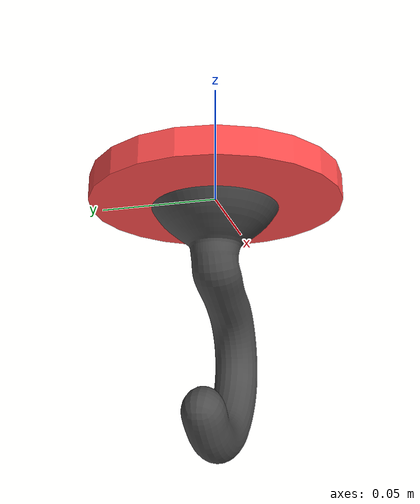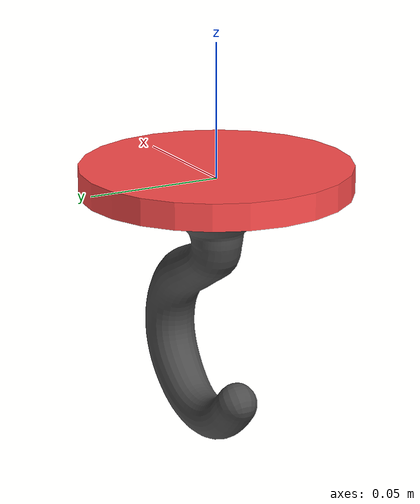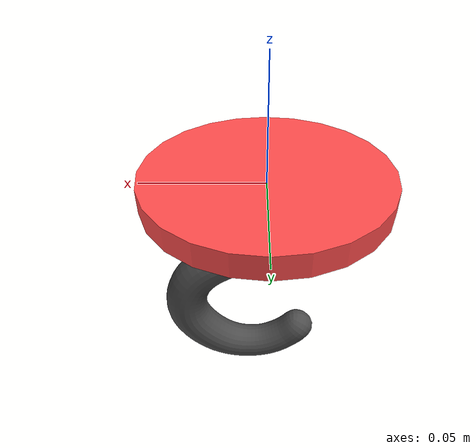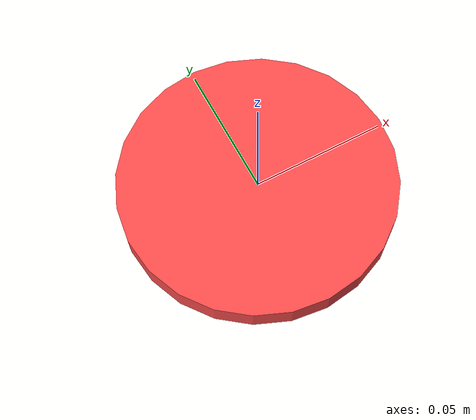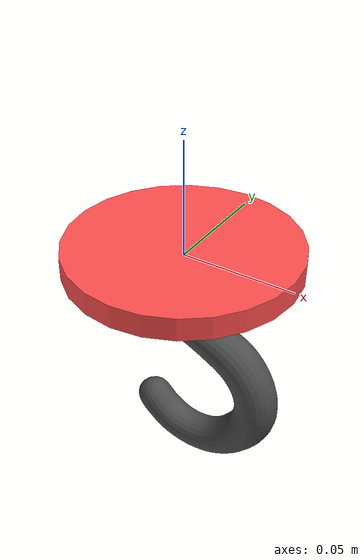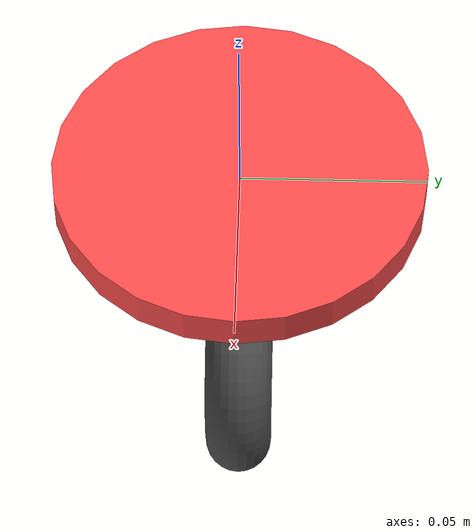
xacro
<?xml version="1.0"?>
<robot name="hook_gripper" xmlns:xacro="http://www.ros.org/wiki/xacro">

  <xacro:include filename="$(find hook_gripper_gazebo)/urdf/hook_gripper.urdf.xacro" />
  <xacro:arg name="prefix" default="" />

  <!-- Desribe 1-dof robot -->
  <link name="world" />

  <joint name="joint" type="prismatic">
    <origin xyz="0 0 0" rpy="3.14 0 0" />
    <parent link="world" />
    <child link="tool0" />
    <axis xyz="0 0 1" />
    <limit effort="300" velocity="1.0" lower="-1" upper="1" />
    <dynamics damping="0.0" />
  </joint>

  <link name="tool0">
    <inertial>
      <origin xyz="0 0 0" rpy="0 0 0" />
      <mass value="1" />
      <inertia ixx="0.01" ixy="0" ixz="0" iyy="0.01" iyz="0" izz="0.01" />
    </inertial>
    <visual>
      <origin xyz="0 0 0" rpy="0 0 0" />
      <geometry>
        <cylinder radius="0.05" length="0.01" />
      </geometry>
      <material name="Grey">
        <color rgba="1.0 0.3 0.3 1.0" />
      </material>
    </visual>
    <collision>
      <origin xyz="0 0 0" rpy="0 0 0" />
      <geometry>
        <cylinder radius="0.05" length="0.01" />
      </geometry>
    </collision>
  </link>

  <transmission name="trans">
    <type>transmission_interface/SimpleTransmission</type>
    <joint name="joint">
      <hardwareInterface>hardware_interface/PositionJointInterface</hardwareInterface>
    </joint>
    <actuator name="motor">
      <mechanicalReduction>1</mechanicalReduction>
    </actuator>
  </transmission>

  <gazebo>
    <plugin name="ros_control" filename="libgazebo_ros_control.so">
      <robotParam>robot_description</robotParam>
    </plugin>
  </gazebo>

  <!-- connect to 1-dof robot The Hook gripper -->
  <xacro:hook_gripper prefix="$(arg prefix)" parent="tool0" obj="box" obj_link="box1">
    <origin xyz="0 0 0" rpy="0 0 0"/>
  </xacro:hook_gripper>

</robot>

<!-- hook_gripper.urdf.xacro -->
<robot name="hook_gripper" xmlns:xacro="http://www.ros.org/wiki/xacro">

  <xacro:property name="M_PI" value="3.1415926535897931" />

  <xacro:macro name="hook_gripper" params="prefix parent *origin obj:=box obj_link:=box1">

    <joint name="${prefix}joint_to_arm" type="revolute">
      <xacro:insert_block name="origin"/>
      <parent link="${parent}" />
      <child link="${prefix}gripper" />
      <axis xyz="0 0 1" />
      <limit effort="1" velocity="1.0" lower="0" upper="0" />
      <dynamics damping="0.0" />
    </joint>

    <link name="${prefix}gripper">
      <inertial>
        <origin xyz="0 0 0" rpy="0 0 0" />
        <mass value="1" />
        <inertia ixx="0.01" ixy="0" ixz="0" iyy="0.01" iyz="0" izz="0.01" />
      </inertial>
      <visual>
        <origin xyz="0 0 0" rpy="0 0 0" />
        <geometry>
          <mesh filename="package://hook_gripper_gazebo/meshes/hook_gripper.dae" scale="1.05 1.05 1.05"/>
        </geometry>
        <material name="Grey">
          <color rgba="0.3 0.3 0.3 1.0" />
        </material>
      </visual>
      <collision>
        <origin xyz="0 0 0" rpy="0 0 0" />
        <geometry>
          <mesh filename="package://hook_gripper_gazebo/meshes/hook_gripper.dae" scale="1.05 1.05 1.05"/>
        </geometry>
      </collision>
    </link>

    <gazebo reference="${prefix}gripper">
      <material>Gazebo/Grey</material>
      <mu1>0.0</mu1>
      <mu2>0.0</mu2>
      <kp>0</kp>
      <kd>0</kd>
    </gazebo>

    <gazebo>
      <plugin name="${prefix}hook_gripper" filename="libhook_gripper_gazebo.so">
        <gripper_robot_name>hook_gripper</gripper_robot_name>
        <gripper_link_name>${prefix}gripper</gripper_link_name>
        <objects_robot_name>${obj}</objects_robot_name>
        <objects_link_name>${obj_link}</objects_link_name>
        <min_collision_depth>0.001</min_collision_depth>
      </plugin>
    </gazebo>

  </xacro:macro>

</robot>
